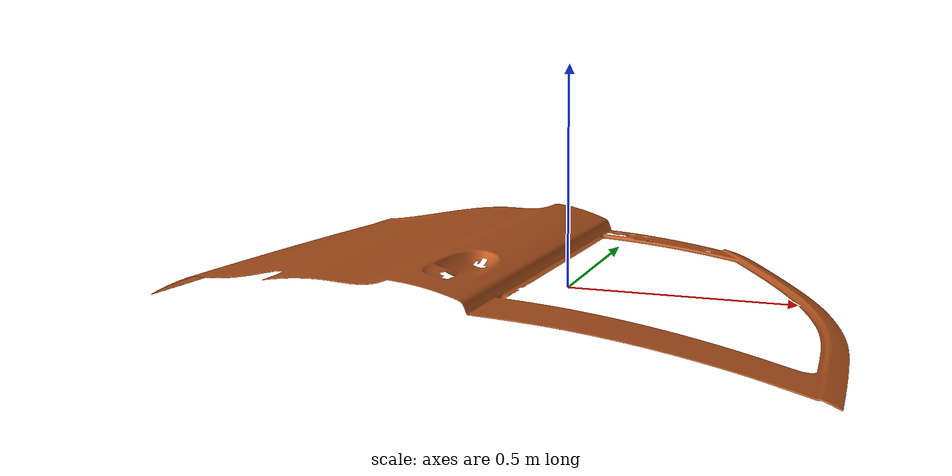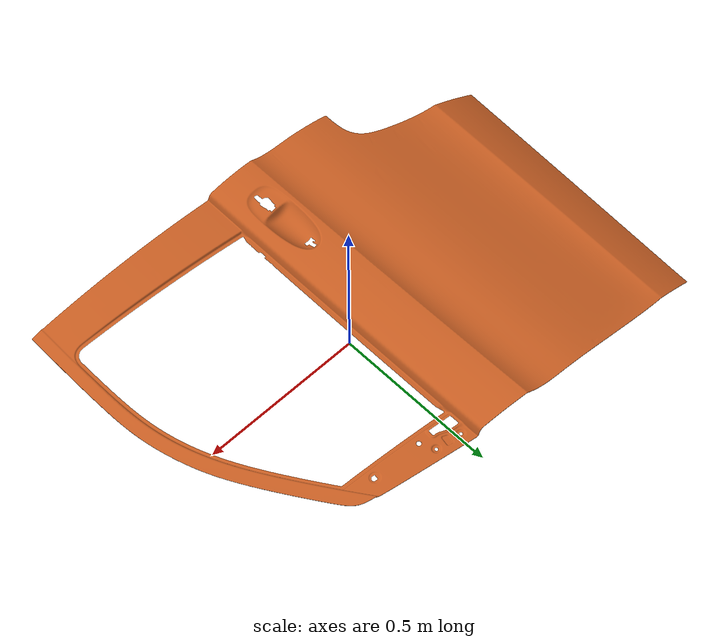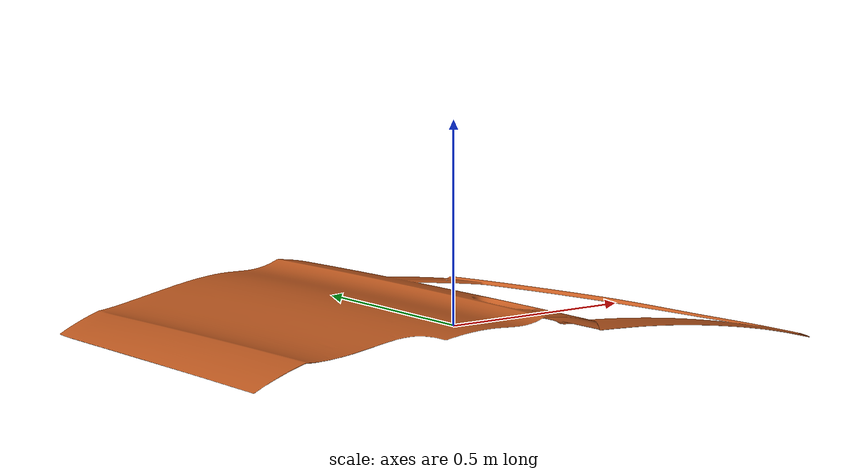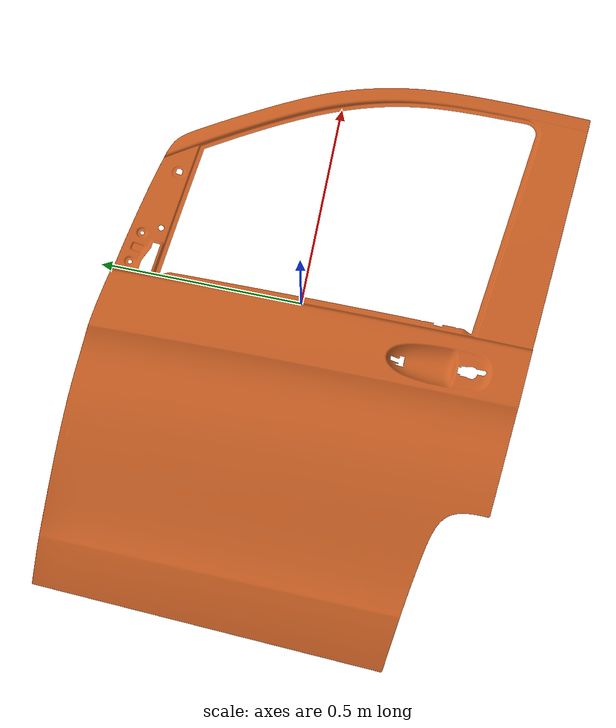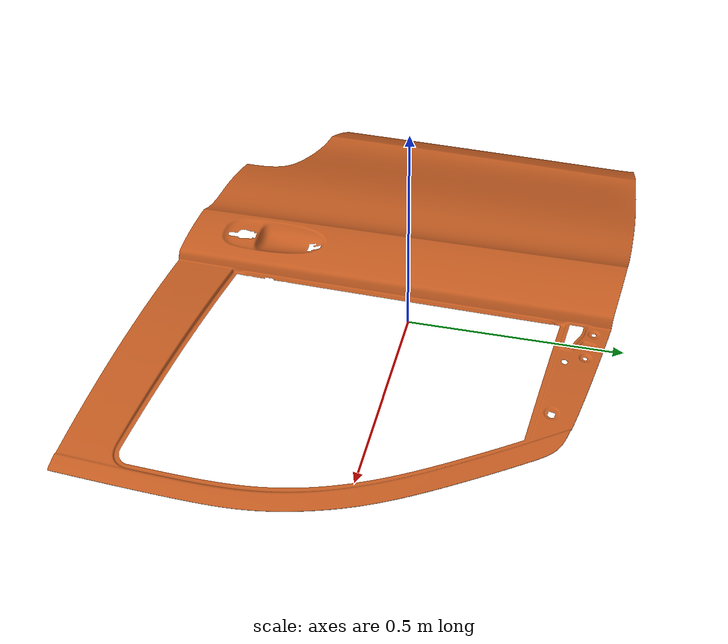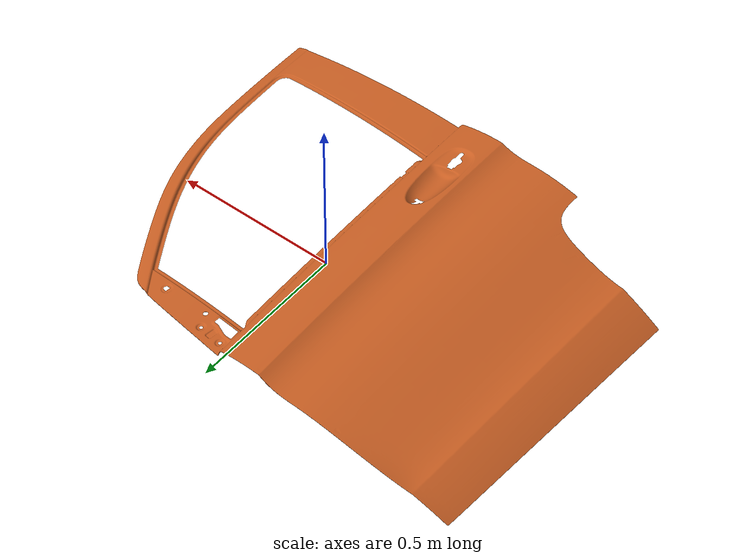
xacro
<?xml version="1.0" ?>
<robot name="car_door_alone" xmlns:xacro="http://ros.org/wiki/xacro">

  <link name="car_door">
      <inertial>
          <mass value="20" />
          <origin xyz="0 0 0" rpy="0 0 0" />
          <inertia ixx="1" ixy="0" ixz="0" iyy="1" iyz="0" izz="1" />
      </inertial>
      <visual name="visual">
        <geometry>
          <mesh filename="package://kuka_control/models/car_door/meshes/car_VITO.dae"/>
        </geometry>
      </visual>
      <collision name="collision">
        <geometry>
          <mesh filename="package://kuka_control/models/car_door/meshes/car_VITO.dae"/>
        </geometry>
      </collision>
  </link>

</robot>
